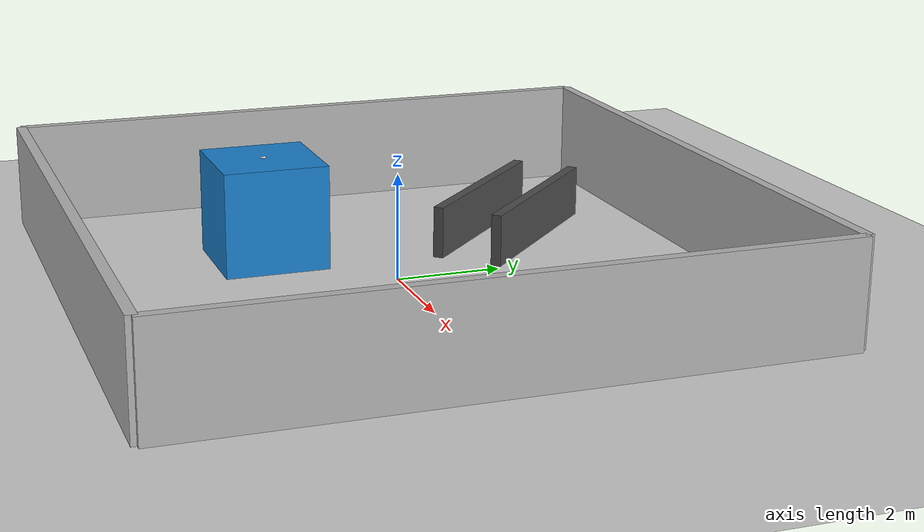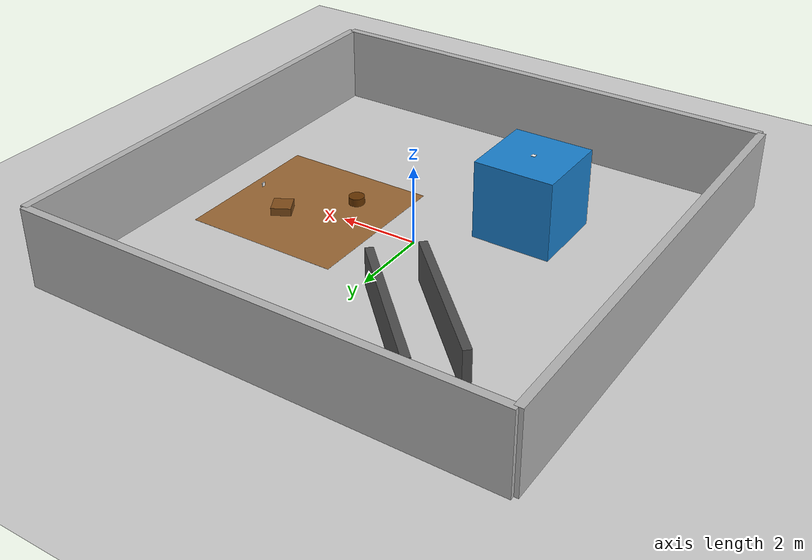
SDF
<?xml version="1.0" ?>
<sdf version="1.6">
  <world name="zones">
    <physics name="1ms" type="ignored">
      <max_step_size>0.001</max_step_size>
      <real_time_factor>1.0</real_time_factor>
    </physics>

    <plugin filename="libignition-gazebo-physics-system.so" name="ignition::gazebo::systems::Physics"></plugin>
    <plugin filename="libignition-gazebo-user-commands-system.so" name="ignition::gazebo::systems::UserCommands"></plugin>
    <plugin filename="libignition-gazebo-scene-broadcaster-system.so" name="ignition::gazebo::systems::SceneBroadcaster"></plugin>
    <plugin filename="libignition-gazebo-sensors-system.so" name="ignition::gazebo::systems::Sensors"></plugin>

    <!-- Sun & Ground -->
    <include>
      <uri>https://fuel.gazebosim.org/1.0/OpenRobotics/models/Sun</uri>
    </include>
    <include>
      <uri>https://fuel.gazebosim.org/1.0/OpenRobotics/models/Ground Plane</uri>
    </include>

    <!-- ZONE 1: ROUGH TERRAIN -->
    <model name="zone_rough_terrain">
      <static>true</static>
      <pose>3.0 0 0 0 0 0</pose>

      <!-- Base Floor -->
      <link name="base">
        <visual name="v_base">
          <geometry><box><size>4.0 4.0 0.001</size></box></geometry>
          <material>
            <ambient>0.6 0.4 0.2 1</ambient>
            <diffuse>0.6 0.4 0.2 1</diffuse>
          </material>
        </visual>
        <collision name="c_base">
          <geometry><box><size>4.0 4.0 0.001</size></box></geometry>
        </collision>
      </link>

      <!-- Debris -->
      <link name="debris_1">
        <pose>0.5 0.5 0.1 0 0 0.5</pose>
        <visual name="v"><geometry><box><size>0.5 0.5 0.2</size></box></geometry>
        <material><ambient>0.5 0.3 0.1 1</ambient><diffuse>0.5 0.3 0.1 1</diffuse></material></visual>
        <collision name="c"><geometry><box><size>0.5 0.5 0.2</size></box></geometry></collision>
      </link>
      <link name="debris_2">
        <pose>-0.8 -0.8 0.1 0 0 -0.2</pose>
        <visual name="v"><geometry><cylinder><radius>0.2</radius><length>0.2</length></cylinder></geometry>
        <material><ambient>0.4 0.2 0.0 1</ambient><diffuse>0.4 0.2 0.0 1</diffuse></material></visual>
        <collision name="c"><geometry><cylinder><radius>0.2</radius><length>0.2</length></cylinder></geometry></collision>
      </link>

      <!-- ARUCO TAG 1 -->
      <link name="tag_1">
        <pose>1.5 0 0.2 0 0 0</pose>
        <visual name="tag_visual">
          <geometry><box><size>0.02 0.1 0.1</size></box></geometry>
          <material>
            <ambient>1 1 1 1</ambient>
            <diffuse>1 1 1 1</diffuse>
            <pbr>
                <metal>
                    <albedo_map>model://chroma_simulation/models/tags/id_0.png</albedo_map>
                </metal>
            </pbr>
          </material>
        </visual>
      </link>
    </model>

    <!-- ZONE 2: NARROW PASSAGE -->
    <model name="zone_narrow_passage">
      <static>true</static>
      <!-- Rotated to point entrance towards center (0,0) -->
      <pose>-2 3.0 0 0 0 -0.785</pose>

      <!-- Left Wall -->
      <link name="wall_left">
        <pose>0 0.6 0.5 0 0 0</pose>
        <visual name="v">
          <geometry><box><size>4.0 0.2 1.0</size></box></geometry>
          <material><ambient>0.3 0.3 0.3 1</ambient><diffuse>0.3 0.3 0.3 1</diffuse></material>
        </visual>
        <collision name="c"><geometry><box><size>4.0 0.2 1.0</size></box></geometry></collision>
      </link>

      <!-- Right Wall -->
      <link name="wall_right">
        <pose>0 -0.6 0.5 0 0 0</pose>
        <visual name="v">
          <geometry><box><size>4.0 0.2 1.0</size></box></geometry>
          <material><ambient>0.3 0.3 0.3 1</ambient><diffuse>0.3 0.3 0.3 1</diffuse></material>
        </visual>
        <collision name="c"><geometry><box><size>4.0 0.2 1.0</size></box></geometry></collision>
      </link>

      <!-- ARUCO TAG 2  -->
      <link name="tag_2">
        <pose>-1.95 0 0.2 0 0 0</pose> <!-- x=-1.95 is the far end of a 4.0m wall -->
        <visual name="tag_visual">
          <geometry><box><size>0.02 0.1 0.1</size></box></geometry>
          <material>
            <ambient>1 1 1 1</ambient>
            <diffuse>1 1 1 1</diffuse>
            <pbr>
                <metal>
                    <albedo_map>model://chroma_simulation/models/tags/id_1.png</albedo_map>
                </metal>
            </pbr>
          </material>
        </visual>
      </link>
    </model>

    <!-- ZONE 3: AERIAL PLATFORM  -->
    <model name="zone_aerial">
      <static>true</static>
      <pose>-2 -2 0 0 0 0</pose>

      <!-- The Tower -->
      <link name="tower">
        <pose>0 0 1.0 0 0 0</pose>
        <visual name="v">
          <geometry><box><size>2.0 2.0 2.0</size></box></geometry>
          <material>
            <ambient>0.1 0.5 0.8 1</ambient>
            <diffuse>0.1 0.5 0.8 1</diffuse>
          </material>
        </visual>
        <collision name="c"><geometry><box><size>2.0 2.0 2.0</size></box></geometry></collision>
      </link>

      <!-- ARUCO TAG 3  -->
      <link name="tag_3">
        <pose>0 0 2.005 0 0 0</pose>
        <visual name="tag_visual">
          <geometry><box><size>0.1 0.1 0.01</size></box></geometry>
          <material>
            <ambient>1 1 1 1</ambient>
            <diffuse>1 1 1 1</diffuse>
            <pbr>
                <metal>
                    <albedo_map>model://chroma_simulation/models/tags/id_2.png</albedo_map>
                </metal>
            </pbr>
          </material>
        </visual>
      </link>
    </model>

    <!-- PERIMETER WALLS (ARENA BOUNDARIES)                         -->
    <model name="perimeter_walls">
      <static>true</static>

      <!-- North Wall -->
      <link name="north_wall">
        <pose>0 6.0 1.0 0 0 0</pose>
        <visual name="v">
          <geometry><box><size>12.0 0.2 2.0</size></box></geometry>
          <material><ambient>0.7 0.7 0.7 1</ambient><diffuse>0.7 0.7 0.7 1</diffuse></material>
        </visual>
        <collision name="c"><geometry><box><size>12.0 0.2 2.0</size></box></geometry></collision>
      </link>

      <!-- South Wall -->
      <link name="south_wall">
        <pose>0 -6.0 1.0 0 0 0</pose>
        <visual name="v">
          <geometry><box><size>12.0 0.2 2.0</size></box></geometry>
          <material><ambient>0.7 0.7 0.7 1</ambient><diffuse>0.7 0.7 0.7 1</diffuse></material>
        </visual>
        <collision name="c"><geometry><box><size>12.0 0.2 2.0</size></box></geometry></collision>
      </link>

      <!-- East Wall -->
      <link name="east_wall">
        <pose>6.0 0 1.0 0 0 0</pose>
        <visual name="v">
          <geometry><box><size>0.2 12.0 2.0</size></box></geometry>
          <material><ambient>0.7 0.7 0.7 1</ambient><diffuse>0.7 0.7 0.7 1</diffuse></material>
        </visual>
        <collision name="c"><geometry><box><size>0.2 12.0 2.0</size></box></geometry></collision>
      </link>

      <!-- West Wall -->
      <link name="west_wall">
        <pose>-6.0 0 1.0 0 0 0</pose>
        <visual name="v">
          <geometry><box><size>0.2 12.0 2.0</size></box></geometry>
          <material><ambient>0.7 0.7 0.7 1</ambient><diffuse>0.7 0.7 0.7 1</diffuse></material>
        </visual>
        <collision name="c"><geometry><box><size>0.2 12.0 2.0</size></box></geometry></collision>
      </link>
    </model>

  </world>
</sdf>
